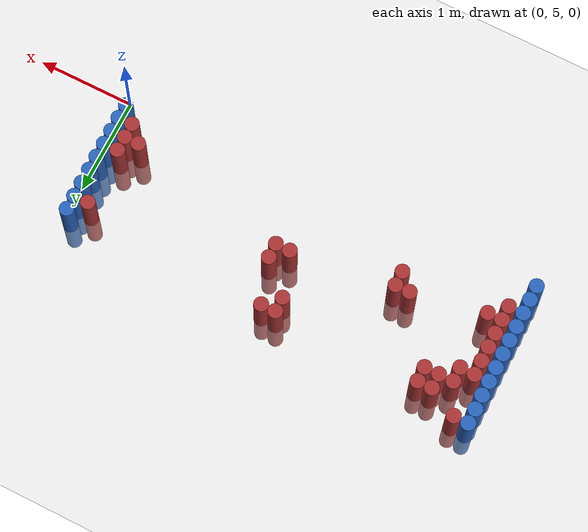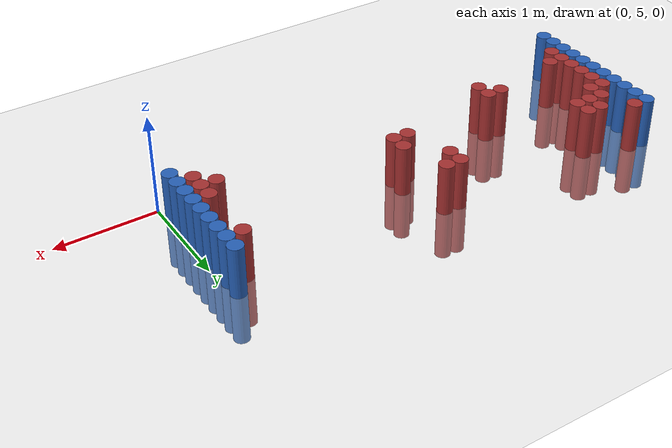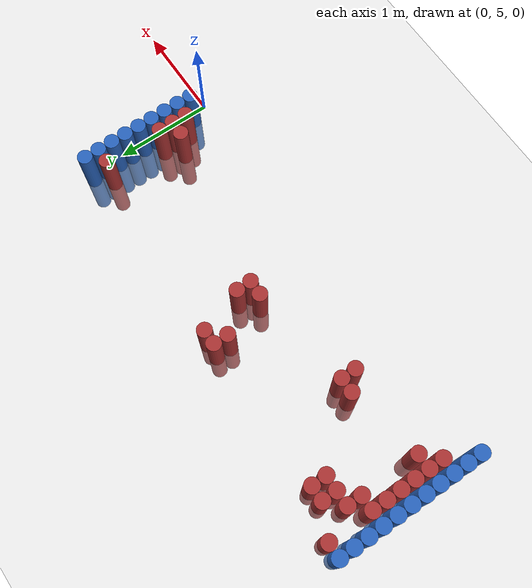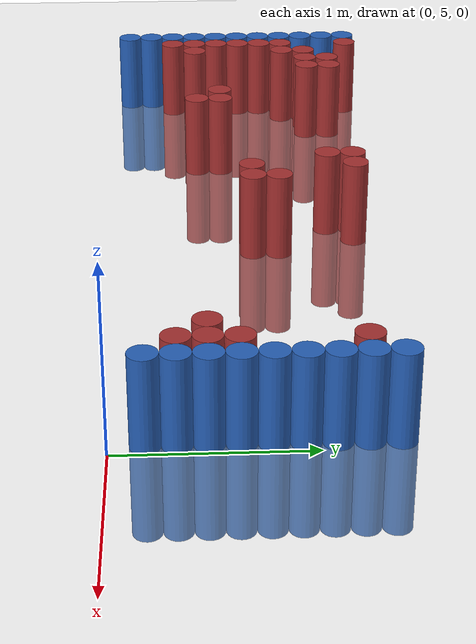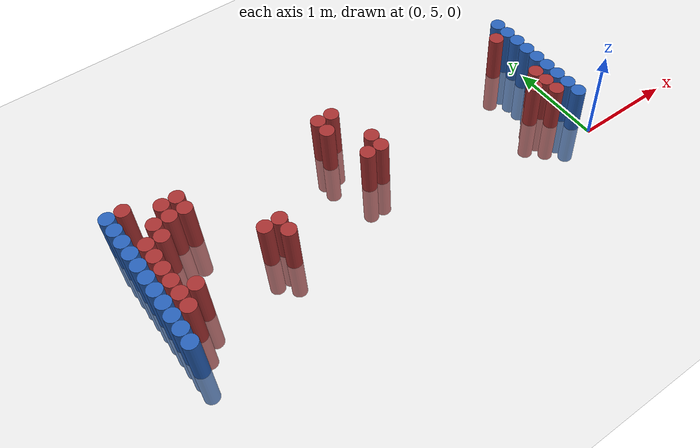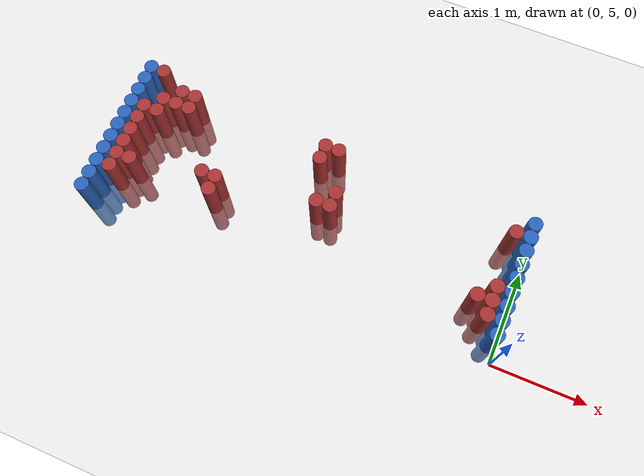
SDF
<sdf version="1.6">
 <world name="default">
  <model name="ground_plane">
   <static>1</static>
   <link name="link">
    <collision name="collision">
     <geometry><plane><normal>0 0 1</normal><size>100 100</size></plane></geometry>
     <surface><friction><ode><mu>100</mu><mu2>50</mu2></ode></friction></surface>
    </collision>
    <visual name="visual">
     <cast_shadows>0</cast_shadows>
     <geometry><plane><normal>0 0 1</normal><size>100 100</size></plane></geometry>
     <material>
      <script><uri>file://media/materials/scripts/gazebo.material</uri><name>Gazebo/Grey</name></script>
     </material>
    </visual>
   </link>
  </model>
  <model name="unit_cylinder_95">
   <static>1</static>
   <pose>-4.425000 5.025000 0.000000 0.000000 0.000000 0.000000</pose>
   <link name="link">
    <inertial>
     <mass>1</mass>
     <inertia><ixx>0.145833</ixx><ixy>0</ixy><ixz>0</ixz><iyy>0.145833</iyy><iyz>0</iyz><izz>0.125</izz></inertia>
    </inertial>
    <collision name="collision">
     <geometry><cylinder><radius>0.075000</radius><length>1</length></cylinder></geometry>
    </collision>
    <visual name="visual">
     <geometry><cylinder><radius>0.075000</radius><length>1</length></cylinder></geometry>
     <material>
      <ambient>0.152000 0.379000 0.720000 1</ambient>
      <diffuse>0.152000 0.379000 0.720000 1</diffuse>
     </material>
     <material>
      <script><name>Gazebo/Grey</name><uri>file://media/materials/scripts/gazebo.material</uri></script>
     </material>
    </visual>
   </link>
  </model>
  <model name="unit_cylinder_96">
   <static>1</static>
   <pose>-4.425000 5.175000 0.000000 0.000000 0.000000 0.000000</pose>
   <link name="link">
    <inertial>
     <mass>1</mass>
     <inertia><ixx>0.145833</ixx><ixy>0</ixy><ixz>0</ixz><iyy>0.145833</iyy><iyz>0</iyz><izz>0.125</izz></inertia>
    </inertial>
    <collision name="collision">
     <geometry><cylinder><radius>0.075000</radius><length>1</length></cylinder></geometry>
    </collision>
    <visual name="visual">
     <geometry><cylinder><radius>0.075000</radius><length>1</length></cylinder></geometry>
     <material>
      <ambient>0.152000 0.379000 0.720000 1</ambient>
      <diffuse>0.152000 0.379000 0.720000 1</diffuse>
     </material>
     <material>
      <script><name>Gazebo/Grey</name><uri>file://media/materials/scripts/gazebo.material</uri></script>
     </material>
    </visual>
   </link>
  </model>
  <model name="unit_cylinder_97">
   <static>1</static>
   <pose>-4.425000 5.325000 0.000000 0.000000 0.000000 0.000000</pose>
   <link name="link">
    <inertial>
     <mass>1</mass>
     <inertia><ixx>0.145833</ixx><ixy>0</ixy><ixz>0</ixz><iyy>0.145833</iyy><iyz>0</iyz><izz>0.125</izz></inertia>
    </inertial>
    <collision name="collision">
     <geometry><cylinder><radius>0.075000</radius><length>1</length></cylinder></geometry>
    </collision>
    <visual name="visual">
     <geometry><cylinder><radius>0.075000</radius><length>1</length></cylinder></geometry>
     <material>
      <ambient>0.152000 0.379000 0.720000 1</ambient>
      <diffuse>0.152000 0.379000 0.720000 1</diffuse>
     </material>
     <material>
      <script><name>Gazebo/Grey</name><uri>file://media/materials/scripts/gazebo.material</uri></script>
     </material>
    </visual>
   </link>
  </model>
  <model name="unit_cylinder_98">
   <static>1</static>
   <pose>-4.425000 5.475000 0.000000 0.000000 0.000000 0.000000</pose>
   <link name="link">
    <inertial>
     <mass>1</mass>
     <inertia><ixx>0.145833</ixx><ixy>0</ixy><ixz>0</ixz><iyy>0.145833</iyy><iyz>0</iyz><izz>0.125</izz></inertia>
    </inertial>
    <collision name="collision">
     <geometry><cylinder><radius>0.075000</radius><length>1</length></cylinder></geometry>
    </collision>
    <visual name="visual">
     <geometry><cylinder><radius>0.075000</radius><length>1</length></cylinder></geometry>
     <material>
      <ambient>0.152000 0.379000 0.720000 1</ambient>
      <diffuse>0.152000 0.379000 0.720000 1</diffuse>
     </material>
     <material>
      <script><name>Gazebo/Grey</name><uri>file://media/materials/scripts/gazebo.material</uri></script>
     </material>
    </visual>
   </link>
  </model>
  <model name="unit_cylinder_99">
   <static>1</static>
   <pose>-4.425000 5.625000 0.000000 0.000000 0.000000 0.000000</pose>
   <link name="link">
    <inertial>
     <mass>1</mass>
     <inertia><ixx>0.145833</ixx><ixy>0</ixy><ixz>0</ixz><iyy>0.145833</iyy><iyz>0</iyz><izz>0.125</izz></inertia>
    </inertial>
    <collision name="collision">
     <geometry><cylinder><radius>0.075000</radius><length>1</length></cylinder></geometry>
    </collision>
    <visual name="visual">
     <geometry><cylinder><radius>0.075000</radius><length>1</length></cylinder></geometry>
     <material>
      <ambient>0.152000 0.379000 0.720000 1</ambient>
      <diffuse>0.152000 0.379000 0.720000 1</diffuse>
     </material>
     <material>
      <script><name>Gazebo/Grey</name><uri>file://media/materials/scripts/gazebo.material</uri></script>
     </material>
    </visual>
   </link>
  </model>
  <model name="unit_cylinder_100">
   <static>1</static>
   <pose>-4.425000 5.775000 0.000000 0.000000 0.000000 0.000000</pose>
   <link name="link">
    <inertial>
     <mass>1</mass>
     <inertia><ixx>0.145833</ixx><ixy>0</ixy><ixz>0</ixz><iyy>0.145833</iyy><iyz>0</iyz><izz>0.125</izz></inertia>
    </inertial>
    <collision name="collision">
     <geometry><cylinder><radius>0.075000</radius><length>1</length></cylinder></geometry>
    </collision>
    <visual name="visual">
     <geometry><cylinder><radius>0.075000</radius><length>1</length></cylinder></geometry>
     <material>
      <ambient>0.152000 0.379000 0.720000 1</ambient>
      <diffuse>0.152000 0.379000 0.720000 1</diffuse>
     </material>
     <material>
      <script><name>Gazebo/Grey</name><uri>file://media/materials/scripts/gazebo.material</uri></script>
     </material>
    </visual>
   </link>
  </model>
  <model name="unit_cylinder_101">
   <static>1</static>
   <pose>-4.425000 5.925000 0.000000 0.000000 0.000000 0.000000</pose>
   <link name="link">
    <inertial>
     <mass>1</mass>
     <inertia><ixx>0.145833</ixx><ixy>0</ixy><ixz>0</ixz><iyy>0.145833</iyy><iyz>0</iyz><izz>0.125</izz></inertia>
    </inertial>
    <collision name="collision">
     <geometry><cylinder><radius>0.075000</radius><length>1</length></cylinder></geometry>
    </collision>
    <visual name="visual">
     <geometry><cylinder><radius>0.075000</radius><length>1</length></cylinder></geometry>
     <material>
      <ambient>0.152000 0.379000 0.720000 1</ambient>
      <diffuse>0.152000 0.379000 0.720000 1</diffuse>
     </material>
     <material>
      <script><name>Gazebo/Grey</name><uri>file://media/materials/scripts/gazebo.material</uri></script>
     </material>
    </visual>
   </link>
  </model>
  <model name="unit_cylinder_102">
   <static>1</static>
   <pose>-4.425000 6.075000 0.000000 0.000000 0.000000 0.000000</pose>
   <link name="link">
    <inertial>
     <mass>1</mass>
     <inertia><ixx>0.145833</ixx><ixy>0</ixy><ixz>0</ixz><iyy>0.145833</iyy><iyz>0</iyz><izz>0.125</izz></inertia>
    </inertial>
    <collision name="collision">
     <geometry><cylinder><radius>0.075000</radius><length>1</length></cylinder></geometry>
    </collision>
    <visual name="visual">
     <geometry><cylinder><radius>0.075000</radius><length>1</length></cylinder></geometry>
     <material>
      <ambient>0.152000 0.379000 0.720000 1</ambient>
      <diffuse>0.152000 0.379000 0.720000 1</diffuse>
     </material>
     <material>
      <script><name>Gazebo/Grey</name><uri>file://media/materials/scripts/gazebo.material</uri></script>
     </material>
    </visual>
   </link>
  </model>
  <model name="unit_cylinder_103">
   <static>1</static>
   <pose>-4.425000 6.225000 0.000000 0.000000 0.000000 0.000000</pose>
   <link name="link">
    <inertial>
     <mass>1</mass>
     <inertia><ixx>0.145833</ixx><ixy>0</ixy><ixz>0</ixz><iyy>0.145833</iyy><iyz>0</iyz><izz>0.125</izz></inertia>
    </inertial>
    <collision name="collision">
     <geometry><cylinder><radius>0.075000</radius><length>1</length></cylinder></geometry>
    </collision>
    <visual name="visual">
     <geometry><cylinder><radius>0.075000</radius><length>1</length></cylinder></geometry>
     <material>
      <ambient>0.152000 0.379000 0.720000 1</ambient>
      <diffuse>0.152000 0.379000 0.720000 1</diffuse>
     </material>
     <material>
      <script><name>Gazebo/Grey</name><uri>file://media/materials/scripts/gazebo.material</uri></script>
     </material>
    </visual>
   </link>
  </model>
  <model name="unit_cylinder_104">
   <static>1</static>
   <pose>-4.425000 6.375000 0.000000 0.000000 0.000000 0.000000</pose>
   <link name="link">
    <inertial>
     <mass>1</mass>
     <inertia><ixx>0.145833</ixx><ixy>0</ixy><ixz>0</ixz><iyy>0.145833</iyy><iyz>0</iyz><izz>0.125</izz></inertia>
    </inertial>
    <collision name="collision">
     <geometry><cylinder><radius>0.075000</radius><length>1</length></cylinder></geometry>
    </collision>
    <visual name="visual">
     <geometry><cylinder><radius>0.075000</radius><length>1</length></cylinder></geometry>
     <material>
      <ambient>0.152000 0.379000 0.720000 1</ambient>
      <diffuse>0.152000 0.379000 0.720000 1</diffuse>
     </material>
     <material>
      <script><name>Gazebo/Grey</name><uri>file://media/materials/scripts/gazebo.material</uri></script>
     </material>
    </visual>
   </link>
  </model>
  <model name="unit_cylinder_105">
   <static>1</static>
   <pose>-4.425000 6.525000 0.000000 0.000000 0.000000 0.000000</pose>
   <link name="link">
    <inertial>
     <mass>1</mass>
     <inertia><ixx>0.145833</ixx><ixy>0</ixy><ixz>0</ixz><iyy>0.145833</iyy><iyz>0</iyz><izz>0.125</izz></inertia>
    </inertial>
    <collision name="collision">
     <geometry><cylinder><radius>0.075000</radius><length>1</length></cylinder></geometry>
    </collision>
    <visual name="visual">
     <geometry><cylinder><radius>0.075000</radius><length>1</length></cylinder></geometry>
     <material>
      <ambient>0.152000 0.379000 0.720000 1</ambient>
      <diffuse>0.152000 0.379000 0.720000 1</diffuse>
     </material>
     <material>
      <script><name>Gazebo/Grey</name><uri>file://media/materials/scripts/gazebo.material</uri></script>
     </material>
    </visual>
   </link>
  </model>
  <model name="unit_cylinder_126">
   <static>1</static>
   <pose>-4.275000 5.325000 0.000000 0.000000 0.000000 0.000000</pose>
   <link name="link">
    <inertial>
     <mass>1</mass>
     <inertia><ixx>0.145833</ixx><ixy>0</ixy><ixz>0</ixz><iyy>0.145833</iyy><iyz>0</iyz><izz>0.125</izz></inertia>
    </inertial>
    <collision name="collision">
     <geometry><cylinder><radius>0.075000</radius><length>1</length></cylinder></geometry>
    </collision>
    <visual name="visual">
     <geometry><cylinder><radius>0.075000</radius><length>1</length></cylinder></geometry>
     <material>
      <ambient>0.648000 0.192000 0.192000 1</ambient>
      <diffuse>0.648000 0.192000 0.192000 1</diffuse>
     </material>
     <material>
      <script><name>Gazebo/Grey</name><uri>file://media/materials/scripts/gazebo.material</uri></script>
     </material>
    </visual>
   </link>
  </model>
  <model name="unit_cylinder_127">
   <static>1</static>
   <pose>-4.275000 5.475000 0.000000 0.000000 0.000000 0.000000</pose>
   <link name="link">
    <inertial>
     <mass>1</mass>
     <inertia><ixx>0.145833</ixx><ixy>0</ixy><ixz>0</ixz><iyy>0.145833</iyy><iyz>0</iyz><izz>0.125</izz></inertia>
    </inertial>
    <collision name="collision">
     <geometry><cylinder><radius>0.075000</radius><length>1</length></cylinder></geometry>
    </collision>
    <visual name="visual">
     <geometry><cylinder><radius>0.075000</radius><length>1</length></cylinder></geometry>
     <material>
      <ambient>0.648000 0.192000 0.192000 1</ambient>
      <diffuse>0.648000 0.192000 0.192000 1</diffuse>
     </material>
     <material>
      <script><name>Gazebo/Grey</name><uri>file://media/materials/scripts/gazebo.material</uri></script>
     </material>
    </visual>
   </link>
  </model>
  <model name="unit_cylinder_128">
   <static>1</static>
   <pose>-4.275000 5.625000 0.000000 0.000000 0.000000 0.000000</pose>
   <link name="link">
    <inertial>
     <mass>1</mass>
     <inertia><ixx>0.145833</ixx><ixy>0</ixy><ixz>0</ixz><iyy>0.145833</iyy><iyz>0</iyz><izz>0.125</izz></inertia>
    </inertial>
    <collision name="collision">
     <geometry><cylinder><radius>0.075000</radius><length>1</length></cylinder></geometry>
    </collision>
    <visual name="visual">
     <geometry><cylinder><radius>0.075000</radius><length>1</length></cylinder></geometry>
     <material>
      <ambient>0.648000 0.192000 0.192000 1</ambient>
      <diffuse>0.648000 0.192000 0.192000 1</diffuse>
     </material>
     <material>
      <script><name>Gazebo/Grey</name><uri>file://media/materials/scripts/gazebo.material</uri></script>
     </material>
    </visual>
   </link>
  </model>
  <model name="unit_cylinder_129">
   <static>1</static>
   <pose>-4.275000 5.775000 0.000000 0.000000 0.000000 0.000000</pose>
   <link name="link">
    <inertial>
     <mass>1</mass>
     <inertia><ixx>0.145833</ixx><ixy>0</ixy><ixz>0</ixz><iyy>0.145833</iyy><iyz>0</iyz><izz>0.125</izz></inertia>
    </inertial>
    <collision name="collision">
     <geometry><cylinder><radius>0.075000</radius><length>1</length></cylinder></geometry>
    </collision>
    <visual name="visual">
     <geometry><cylinder><radius>0.075000</radius><length>1</length></cylinder></geometry>
     <material>
      <ambient>0.648000 0.192000 0.192000 1</ambient>
      <diffuse>0.648000 0.192000 0.192000 1</diffuse>
     </material>
     <material>
      <script><name>Gazebo/Grey</name><uri>file://media/materials/scripts/gazebo.material</uri></script>
     </material>
    </visual>
   </link>
  </model>
  <model name="unit_cylinder_130">
   <static>1</static>
   <pose>-4.275000 5.925000 0.000000 0.000000 0.000000 0.000000</pose>
   <link name="link">
    <inertial>
     <mass>1</mass>
     <inertia><ixx>0.145833</ixx><ixy>0</ixy><ixz>0</ixz><iyy>0.145833</iyy><iyz>0</iyz><izz>0.125</izz></inertia>
    </inertial>
    <collision name="collision">
     <geometry><cylinder><radius>0.075000</radius><length>1</length></cylinder></geometry>
    </collision>
    <visual name="visual">
     <geometry><cylinder><radius>0.075000</radius><length>1</length></cylinder></geometry>
     <material>
      <ambient>0.648000 0.192000 0.192000 1</ambient>
      <diffuse>0.648000 0.192000 0.192000 1</diffuse>
     </material>
     <material>
      <script><name>Gazebo/Grey</name><uri>file://media/materials/scripts/gazebo.material</uri></script>
     </material>
    </visual>
   </link>
  </model>
  <model name="unit_cylinder_131">
   <static>1</static>
   <pose>-4.275000 6.075000 0.000000 0.000000 0.000000 0.000000</pose>
   <link name="link">
    <inertial>
     <mass>1</mass>
     <inertia><ixx>0.145833</ixx><ixy>0</ixy><ixz>0</ixz><iyy>0.145833</iyy><iyz>0</iyz><izz>0.125</izz></inertia>
    </inertial>
    <collision name="collision">
     <geometry><cylinder><radius>0.075000</radius><length>1</length></cylinder></geometry>
    </collision>
    <visual name="visual">
     <geometry><cylinder><radius>0.075000</radius><length>1</length></cylinder></geometry>
     <material>
      <ambient>0.648000 0.192000 0.192000 1</ambient>
      <diffuse>0.648000 0.192000 0.192000 1</diffuse>
     </material>
     <material>
      <script><name>Gazebo/Grey</name><uri>file://media/materials/scripts/gazebo.material</uri></script>
     </material>
    </visual>
   </link>
  </model>
  <model name="unit_cylinder_132">
   <static>1</static>
   <pose>-4.275000 6.525000 0.000000 0.000000 0.000000 0.000000</pose>
   <link name="link">
    <inertial>
     <mass>1</mass>
     <inertia><ixx>0.145833</ixx><ixy>0</ixy><ixz>0</ixz><iyy>0.145833</iyy><iyz>0</iyz><izz>0.125</izz></inertia>
    </inertial>
    <collision name="collision">
     <geometry><cylinder><radius>0.075000</radius><length>1</length></cylinder></geometry>
    </collision>
    <visual name="visual">
     <geometry><cylinder><radius>0.075000</radius><length>1</length></cylinder></geometry>
     <material>
      <ambient>0.648000 0.192000 0.192000 1</ambient>
      <diffuse>0.648000 0.192000 0.192000 1</diffuse>
     </material>
     <material>
      <script><name>Gazebo/Grey</name><uri>file://media/materials/scripts/gazebo.material</uri></script>
     </material>
    </visual>
   </link>
  </model>
  <model name="unit_cylinder_141">
   <static>1</static>
   <pose>-4.125000 5.475000 0.000000 0.000000 0.000000 0.000000</pose>
   <link name="link">
    <inertial>
     <mass>1</mass>
     <inertia><ixx>0.145833</ixx><ixy>0</ixy><ixz>0</ixz><iyy>0.145833</iyy><iyz>0</iyz><izz>0.125</izz></inertia>
    </inertial>
    <collision name="collision">
     <geometry><cylinder><radius>0.075000</radius><length>1</length></cylinder></geometry>
    </collision>
    <visual name="visual">
     <geometry><cylinder><radius>0.075000</radius><length>1</length></cylinder></geometry>
     <material>
      <ambient>0.648000 0.192000 0.192000 1</ambient>
      <diffuse>0.648000 0.192000 0.192000 1</diffuse>
     </material>
     <material>
      <script><name>Gazebo/Grey</name><uri>file://media/materials/scripts/gazebo.material</uri></script>
     </material>
    </visual>
   </link>
  </model>
  <model name="unit_cylinder_142">
   <static>1</static>
   <pose>-4.125000 6.075000 0.000000 0.000000 0.000000 0.000000</pose>
   <link name="link">
    <inertial>
     <mass>1</mass>
     <inertia><ixx>0.145833</ixx><ixy>0</ixy><ixz>0</ixz><iyy>0.145833</iyy><iyz>0</iyz><izz>0.125</izz></inertia>
    </inertial>
    <collision name="collision">
     <geometry><cylinder><radius>0.075000</radius><length>1</length></cylinder></geometry>
    </collision>
    <visual name="visual">
     <geometry><cylinder><radius>0.075000</radius><length>1</length></cylinder></geometry>
     <material>
      <ambient>0.648000 0.192000 0.192000 1</ambient>
      <diffuse>0.648000 0.192000 0.192000 1</diffuse>
     </material>
     <material>
      <script><name>Gazebo/Grey</name><uri>file://media/materials/scripts/gazebo.material</uri></script>
     </material>
    </visual>
   </link>
  </model>
  <model name="unit_cylinder_143">
   <static>1</static>
   <pose>-4.125000 6.225000 0.000000 0.000000 0.000000 0.000000</pose>
   <link name="link">
    <inertial>
     <mass>1</mass>
     <inertia><ixx>0.145833</ixx><ixy>0</ixy><ixz>0</ixz><iyy>0.145833</iyy><iyz>0</iyz><izz>0.125</izz></inertia>
    </inertial>
    <collision name="collision">
     <geometry><cylinder><radius>0.075000</radius><length>1</length></cylinder></geometry>
    </collision>
    <visual name="visual">
     <geometry><cylinder><radius>0.075000</radius><length>1</length></cylinder></geometry>
     <material>
      <ambient>0.648000 0.192000 0.192000 1</ambient>
      <diffuse>0.648000 0.192000 0.192000 1</diffuse>
     </material>
     <material>
      <script><name>Gazebo/Grey</name><uri>file://media/materials/scripts/gazebo.material</uri></script>
     </material>
    </visual>
   </link>
  </model>
  <model name="unit_cylinder_148">
   <static>1</static>
   <pose>-3.975000 6.225000 0.000000 0.000000 0.000000 0.000000</pose>
   <link name="link">
    <inertial>
     <mass>1</mass>
     <inertia><ixx>0.145833</ixx><ixy>0</ixy><ixz>0</ixz><iyy>0.145833</iyy><iyz>0</iyz><izz>0.125</izz></inertia>
    </inertial>
    <collision name="collision">
     <geometry><cylinder><radius>0.075000</radius><length>1</length></cylinder></geometry>
    </collision>
    <visual name="visual">
     <geometry><cylinder><radius>0.075000</radius><length>1</length></cylinder></geometry>
     <material>
      <ambient>0.648000 0.192000 0.192000 1</ambient>
      <diffuse>0.648000 0.192000 0.192000 1</diffuse>
     </material>
     <material>
      <script><name>Gazebo/Grey</name><uri>file://media/materials/scripts/gazebo.material</uri></script>
     </material>
    </visual>
   </link>
  </model>
  <model name="unit_cylinder_149">
   <static>1</static>
   <pose>-3.975000 6.375000 0.000000 0.000000 0.000000 0.000000</pose>
   <link name="link">
    <inertial>
     <mass>1</mass>
     <inertia><ixx>0.145833</ixx><ixy>0</ixy><ixz>0</ixz><iyy>0.145833</iyy><iyz>0</iyz><izz>0.125</izz></inertia>
    </inertial>
    <collision name="collision">
     <geometry><cylinder><radius>0.075000</radius><length>1</length></cylinder></geometry>
    </collision>
    <visual name="visual">
     <geometry><cylinder><radius>0.075000</radius><length>1</length></cylinder></geometry>
     <material>
      <ambient>0.648000 0.192000 0.192000 1</ambient>
      <diffuse>0.648000 0.192000 0.192000 1</diffuse>
     </material>
     <material>
      <script><name>Gazebo/Grey</name><uri>file://media/materials/scripts/gazebo.material</uri></script>
     </material>
    </visual>
   </link>
  </model>
  <model name="unit_cylinder_153">
   <static>1</static>
   <pose>-3.825000 6.225000 0.000000 0.000000 0.000000 0.000000</pose>
   <link name="link">
    <inertial>
     <mass>1</mass>
     <inertia><ixx>0.145833</ixx><ixy>0</ixy><ixz>0</ixz><iyy>0.145833</iyy><iyz>0</iyz><izz>0.125</izz></inertia>
    </inertial>
    <collision name="collision">
     <geometry><cylinder><radius>0.075000</radius><length>1</length></cylinder></geometry>
    </collision>
    <visual name="visual">
     <geometry><cylinder><radius>0.075000</radius><length>1</length></cylinder></geometry>
     <material>
      <ambient>0.648000 0.192000 0.192000 1</ambient>
      <diffuse>0.648000 0.192000 0.192000 1</diffuse>
     </material>
     <material>
      <script><name>Gazebo/Grey</name><uri>file://media/materials/scripts/gazebo.material</uri></script>
     </material>
    </visual>
   </link>
  </model>
  <model name="unit_cylinder_154">
   <static>1</static>
   <pose>-3.825000 6.375000 0.000000 0.000000 0.000000 0.000000</pose>
   <link name="link">
    <inertial>
     <mass>1</mass>
     <inertia><ixx>0.145833</ixx><ixy>0</ixy><ixz>0</ixz><iyy>0.145833</iyy><iyz>0</iyz><izz>0.125</izz></inertia>
    </inertial>
    <collision name="collision">
     <geometry><cylinder><radius>0.075000</radius><length>1</length></cylinder></geometry>
    </collision>
    <visual name="visual">
     <geometry><cylinder><radius>0.075000</radius><length>1</length></cylinder></geometry>
     <material>
      <ambient>0.648000 0.192000 0.192000 1</ambient>
      <diffuse>0.648000 0.192000 0.192000 1</diffuse>
     </material>
     <material>
      <script><name>Gazebo/Grey</name><uri>file://media/materials/scripts/gazebo.material</uri></script>
     </material>
    </visual>
   </link>
  </model>
  <model name="unit_cylinder_159">
   <static>1</static>
   <pose>-3.375000 5.625000 0.000000 0.000000 0.000000 0.000000</pose>
   <link name="link">
    <inertial>
     <mass>1</mass>
     <inertia><ixx>0.145833</ixx><ixy>0</ixy><ixz>0</ixz><iyy>0.145833</iyy><iyz>0</iyz><izz>0.125</izz></inertia>
    </inertial>
    <collision name="collision">
     <geometry><cylinder><radius>0.075000</radius><length>1</length></cylinder></geometry>
    </collision>
    <visual name="visual">
     <geometry><cylinder><radius>0.075000</radius><length>1</length></cylinder></geometry>
     <material>
      <ambient>0.648000 0.192000 0.192000 1</ambient>
      <diffuse>0.648000 0.192000 0.192000 1</diffuse>
     </material>
     <material>
      <script><name>Gazebo/Grey</name><uri>file://media/materials/scripts/gazebo.material</uri></script>
     </material>
    </visual>
   </link>
  </model>
  <model name="unit_cylinder_162">
   <static>1</static>
   <pose>-3.225000 5.475000 0.000000 0.000000 0.000000 0.000000</pose>
   <link name="link">
    <inertial>
     <mass>1</mass>
     <inertia><ixx>0.145833</ixx><ixy>0</ixy><ixz>0</ixz><iyy>0.145833</iyy><iyz>0</iyz><izz>0.125</izz></inertia>
    </inertial>
    <collision name="collision">
     <geometry><cylinder><radius>0.075000</radius><length>1</length></cylinder></geometry>
    </collision>
    <visual name="visual">
     <geometry><cylinder><radius>0.075000</radius><length>1</length></cylinder></geometry>
     <material>
      <ambient>0.648000 0.192000 0.192000 1</ambient>
      <diffuse>0.648000 0.192000 0.192000 1</diffuse>
     </material>
     <material>
      <script><name>Gazebo/Grey</name><uri>file://media/materials/scripts/gazebo.material</uri></script>
     </material>
    </visual>
   </link>
  </model>
  <model name="unit_cylinder_163">
   <static>1</static>
   <pose>-3.225000 5.625000 0.000000 0.000000 0.000000 0.000000</pose>
   <link name="link">
    <inertial>
     <mass>1</mass>
     <inertia><ixx>0.145833</ixx><ixy>0</ixy><ixz>0</ixz><iyy>0.145833</iyy><iyz>0</iyz><izz>0.125</izz></inertia>
    </inertial>
    <collision name="collision">
     <geometry><cylinder><radius>0.075000</radius><length>1</length></cylinder></geometry>
    </collision>
    <visual name="visual">
     <geometry><cylinder><radius>0.075000</radius><length>1</length></cylinder></geometry>
     <material>
      <ambient>0.648000 0.192000 0.192000 1</ambient>
      <diffuse>0.648000 0.192000 0.192000 1</diffuse>
     </material>
     <material>
      <script><name>Gazebo/Grey</name><uri>file://media/materials/scripts/gazebo.material</uri></script>
     </material>
    </visual>
   </link>
  </model>
  <model name="unit_cylinder_176">
   <static>1</static>
   <pose>-2.325000 6.225000 0.000000 0.000000 0.000000 0.000000</pose>
   <link name="link">
    <inertial>
     <mass>1</mass>
     <inertia><ixx>0.145833</ixx><ixy>0</ixy><ixz>0</ixz><iyy>0.145833</iyy><iyz>0</iyz><izz>0.125</izz></inertia>
    </inertial>
    <collision name="collision">
     <geometry><cylinder><radius>0.075000</radius><length>1</length></cylinder></geometry>
    </collision>
    <visual name="visual">
     <geometry><cylinder><radius>0.075000</radius><length>1</length></cylinder></geometry>
     <material>
      <ambient>0.648000 0.192000 0.192000 1</ambient>
      <diffuse>0.648000 0.192000 0.192000 1</diffuse>
     </material>
     <material>
      <script><name>Gazebo/Grey</name><uri>file://media/materials/scripts/gazebo.material</uri></script>
     </material>
    </visual>
   </link>
  </model>
  <model name="unit_cylinder_177">
   <static>1</static>
   <pose>-2.325000 6.375000 0.000000 0.000000 0.000000 0.000000</pose>
   <link name="link">
    <inertial>
     <mass>1</mass>
     <inertia><ixx>0.145833</ixx><ixy>0</ixy><ixz>0</ixz><iyy>0.145833</iyy><iyz>0</iyz><izz>0.125</izz></inertia>
    </inertial>
    <collision name="collision">
     <geometry><cylinder><radius>0.075000</radius><length>1</length></cylinder></geometry>
    </collision>
    <visual name="visual">
     <geometry><cylinder><radius>0.075000</radius><length>1</length></cylinder></geometry>
     <material>
      <ambient>0.648000 0.192000 0.192000 1</ambient>
      <diffuse>0.648000 0.192000 0.192000 1</diffuse>
     </material>
     <material>
      <script><name>Gazebo/Grey</name><uri>file://media/materials/scripts/gazebo.material</uri></script>
     </material>
    </visual>
   </link>
  </model>
  <model name="unit_cylinder_178">
   <static>1</static>
   <pose>-2.175000 5.775000 0.000000 0.000000 0.000000 0.000000</pose>
   <link name="link">
    <inertial>
     <mass>1</mass>
     <inertia><ixx>0.145833</ixx><ixy>0</ixy><ixz>0</ixz><iyy>0.145833</iyy><iyz>0</iyz><izz>0.125</izz></inertia>
    </inertial>
    <collision name="collision">
     <geometry><cylinder><radius>0.075000</radius><length>1</length></cylinder></geometry>
    </collision>
    <visual name="visual">
     <geometry><cylinder><radius>0.075000</radius><length>1</length></cylinder></geometry>
     <material>
      <ambient>0.648000 0.192000 0.192000 1</ambient>
      <diffuse>0.648000 0.192000 0.192000 1</diffuse>
     </material>
     <material>
      <script><name>Gazebo/Grey</name><uri>file://media/materials/scripts/gazebo.material</uri></script>
     </material>
    </visual>
   </link>
  </model>
  <model name="unit_cylinder_179">
   <static>1</static>
   <pose>-2.175000 6.375000 0.000000 0.000000 0.000000 0.000000</pose>
   <link name="link">
    <inertial>
     <mass>1</mass>
     <inertia><ixx>0.145833</ixx><ixy>0</ixy><ixz>0</ixz><iyy>0.145833</iyy><iyz>0</iyz><izz>0.125</izz></inertia>
    </inertial>
    <collision name="collision">
     <geometry><cylinder><radius>0.075000</radius><length>1</length></cylinder></geometry>
    </collision>
    <visual name="visual">
     <geometry><cylinder><radius>0.075000</radius><length>1</length></cylinder></geometry>
     <material>
      <ambient>0.648000 0.192000 0.192000 1</ambient>
      <diffuse>0.648000 0.192000 0.192000 1</diffuse>
     </material>
     <material>
      <script><name>Gazebo/Grey</name><uri>file://media/materials/scripts/gazebo.material</uri></script>
     </material>
    </visual>
   </link>
  </model>
  <model name="unit_cylinder_182">
   <static>1</static>
   <pose>-2.025000 5.775000 0.000000 0.000000 0.000000 0.000000</pose>
   <link name="link">
    <inertial>
     <mass>1</mass>
     <inertia><ixx>0.145833</ixx><ixy>0</ixy><ixz>0</ixz><iyy>0.145833</iyy><iyz>0</iyz><izz>0.125</izz></inertia>
    </inertial>
    <collision name="collision">
     <geometry><cylinder><radius>0.075000</radius><length>1</length></cylinder></geometry>
    </collision>
    <visual name="visual">
     <geometry><cylinder><radius>0.075000</radius><length>1</length></cylinder></geometry>
     <material>
      <ambient>0.648000 0.192000 0.192000 1</ambient>
      <diffuse>0.648000 0.192000 0.192000 1</diffuse>
     </material>
     <material>
      <script><name>Gazebo/Grey</name><uri>file://media/materials/scripts/gazebo.material</uri></script>
     </material>
    </visual>
   </link>
  </model>
  <model name="unit_cylinder_183">
   <static>1</static>
   <pose>-2.025000 5.925000 0.000000 0.000000 0.000000 0.000000</pose>
   <link name="link">
    <inertial>
     <mass>1</mass>
     <inertia><ixx>0.145833</ixx><ixy>0</ixy><ixz>0</ixz><iyy>0.145833</iyy><iyz>0</iyz><izz>0.125</izz></inertia>
    </inertial>
    <collision name="collision">
     <geometry><cylinder><radius>0.075000</radius><length>1</length></cylinder></geometry>
    </collision>
    <visual name="visual">
     <geometry><cylinder><radius>0.075000</radius><length>1</length></cylinder></geometry>
     <material>
      <ambient>0.648000 0.192000 0.192000 1</ambient>
      <diffuse>0.648000 0.192000 0.192000 1</diffuse>
     </material>
     <material>
      <script><name>Gazebo/Grey</name><uri>file://media/materials/scripts/gazebo.material</uri></script>
     </material>
    </visual>
   </link>
  </model>
  <model name="unit_cylinder_189">
   <static>1</static>
   <pose>-0.375000 5.475000 0.000000 0.000000 0.000000 0.000000</pose>
   <link name="link">
    <inertial>
     <mass>1</mass>
     <inertia><ixx>0.145833</ixx><ixy>0</ixy><ixz>0</ixz><iyy>0.145833</iyy><iyz>0</iyz><izz>0.125</izz></inertia>
    </inertial>
    <collision name="collision">
     <geometry><cylinder><radius>0.075000</radius><length>1</length></cylinder></geometry>
    </collision>
    <visual name="visual">
     <geometry><cylinder><radius>0.075000</radius><length>1</length></cylinder></geometry>
     <material>
      <ambient>0.648000 0.192000 0.192000 1</ambient>
      <diffuse>0.648000 0.192000 0.192000 1</diffuse>
     </material>
     <material>
      <script><name>Gazebo/Grey</name><uri>file://media/materials/scripts/gazebo.material</uri></script>
     </material>
    </visual>
   </link>
  </model>
  <model name="unit_cylinder_193">
   <static>1</static>
   <pose>-0.225000 5.325000 0.000000 0.000000 0.000000 0.000000</pose>
   <link name="link">
    <inertial>
     <mass>1</mass>
     <inertia><ixx>0.145833</ixx><ixy>0</ixy><ixz>0</ixz><iyy>0.145833</iyy><iyz>0</iyz><izz>0.125</izz></inertia>
    </inertial>
    <collision name="collision">
     <geometry><cylinder><radius>0.075000</radius><length>1</length></cylinder></geometry>
    </collision>
    <visual name="visual">
     <geometry><cylinder><radius>0.075000</radius><length>1</length></cylinder></geometry>
     <material>
      <ambient>0.648000 0.192000 0.192000 1</ambient>
      <diffuse>0.648000 0.192000 0.192000 1</diffuse>
     </material>
     <material>
      <script><name>Gazebo/Grey</name><uri>file://media/materials/scripts/gazebo.material</uri></script>
     </material>
    </visual>
   </link>
  </model>
  <model name="unit_cylinder_194">
   <static>1</static>
   <pose>-0.225000 5.475000 0.000000 0.000000 0.000000 0.000000</pose>
   <link name="link">
    <inertial>
     <mass>1</mass>
     <inertia><ixx>0.145833</ixx><ixy>0</ixy><ixz>0</ixz><iyy>0.145833</iyy><iyz>0</iyz><izz>0.125</izz></inertia>
    </inertial>
    <collision name="collision">
     <geometry><cylinder><radius>0.075000</radius><length>1</length></cylinder></geometry>
    </collision>
    <visual name="visual">
     <geometry><cylinder><radius>0.075000</radius><length>1</length></cylinder></geometry>
     <material>
      <ambient>0.648000 0.192000 0.192000 1</ambient>
      <diffuse>0.648000 0.192000 0.192000 1</diffuse>
     </material>
     <material>
      <script><name>Gazebo/Grey</name><uri>file://media/materials/scripts/gazebo.material</uri></script>
     </material>
    </visual>
   </link>
  </model>
  <model name="unit_cylinder_195">
   <static>1</static>
   <pose>-0.225000 5.625000 0.000000 0.000000 0.000000 0.000000</pose>
   <link name="link">
    <inertial>
     <mass>1</mass>
     <inertia><ixx>0.145833</ixx><ixy>0</ixy><ixz>0</ixz><iyy>0.145833</iyy><iyz>0</iyz><izz>0.125</izz></inertia>
    </inertial>
    <collision name="collision">
     <geometry><cylinder><radius>0.075000</radius><length>1</length></cylinder></geometry>
    </collision>
    <visual name="visual">
     <geometry><cylinder><radius>0.075000</radius><length>1</length></cylinder></geometry>
     <material>
      <ambient>0.648000 0.192000 0.192000 1</ambient>
      <diffuse>0.648000 0.192000 0.192000 1</diffuse>
     </material>
     <material>
      <script><name>Gazebo/Grey</name><uri>file://media/materials/scripts/gazebo.material</uri></script>
     </material>
    </visual>
   </link>
  </model>
  <model name="unit_cylinder_196">
   <static>1</static>
   <pose>-0.225000 6.225000 0.000000 0.000000 0.000000 0.000000</pose>
   <link name="link">
    <inertial>
     <mass>1</mass>
     <inertia><ixx>0.145833</ixx><ixy>0</ixy><ixz>0</ixz><iyy>0.145833</iyy><iyz>0</iyz><izz>0.125</izz></inertia>
    </inertial>
    <collision name="collision">
     <geometry><cylinder><radius>0.075000</radius><length>1</length></cylinder></geometry>
    </collision>
    <visual name="visual">
     <geometry><cylinder><radius>0.075000</radius><length>1</length></cylinder></geometry>
     <material>
      <ambient>0.648000 0.192000 0.192000 1</ambient>
      <diffuse>0.648000 0.192000 0.192000 1</diffuse>
     </material>
     <material>
      <script><name>Gazebo/Grey</name><uri>file://media/materials/scripts/gazebo.material</uri></script>
     </material>
    </visual>
   </link>
  </model>
  <model name="unit_cylinder_208">
   <static>1</static>
   <pose>-0.075000 5.175000 0.000000 0.000000 0.000000 0.000000</pose>
   <link name="link">
    <inertial>
     <mass>1</mass>
     <inertia><ixx>0.145833</ixx><ixy>0</ixy><ixz>0</ixz><iyy>0.145833</iyy><iyz>0</iyz><izz>0.125</izz></inertia>
    </inertial>
    <collision name="collision">
     <geometry><cylinder><radius>0.075000</radius><length>1</length></cylinder></geometry>
    </collision>
    <visual name="visual">
     <geometry><cylinder><radius>0.075000</radius><length>1</length></cylinder></geometry>
     <material>
      <ambient>0.152000 0.379000 0.720000 1</ambient>
      <diffuse>0.152000 0.379000 0.720000 1</diffuse>
     </material>
     <material>
      <script><name>Gazebo/Grey</name><uri>file://media/materials/scripts/gazebo.material</uri></script>
     </material>
    </visual>
   </link>
  </model>
  <model name="unit_cylinder_209">
   <static>1</static>
   <pose>-0.075000 5.325000 0.000000 0.000000 0.000000 0.000000</pose>
   <link name="link">
    <inertial>
     <mass>1</mass>
     <inertia><ixx>0.145833</ixx><ixy>0</ixy><ixz>0</ixz><iyy>0.145833</iyy><iyz>0</iyz><izz>0.125</izz></inertia>
    </inertial>
    <collision name="collision">
     <geometry><cylinder><radius>0.075000</radius><length>1</length></cylinder></geometry>
    </collision>
    <visual name="visual">
     <geometry><cylinder><radius>0.075000</radius><length>1</length></cylinder></geometry>
     <material>
      <ambient>0.152000 0.379000 0.720000 1</ambient>
      <diffuse>0.152000 0.379000 0.720000 1</diffuse>
     </material>
     <material>
      <script><name>Gazebo/Grey</name><uri>file://media/materials/scripts/gazebo.material</uri></script>
     </material>
    </visual>
   </link>
  </model>
  <model name="unit_cylinder_210">
   <static>1</static>
   <pose>-0.075000 5.475000 0.000000 0.000000 0.000000 0.000000</pose>
   <link name="link">
    <inertial>
     <mass>1</mass>
     <inertia><ixx>0.145833</ixx><ixy>0</ixy><ixz>0</ixz><iyy>0.145833</iyy><iyz>0</iyz><izz>0.125</izz></inertia>
    </inertial>
    <collision name="collision">
     <geometry><cylinder><radius>0.075000</radius><length>1</length></cylinder></geometry>
    </collision>
    <visual name="visual">
     <geometry><cylinder><radius>0.075000</radius><length>1</length></cylinder></geometry>
     <material>
      <ambient>0.152000 0.379000 0.720000 1</ambient>
      <diffuse>0.152000 0.379000 0.720000 1</diffuse>
     </material>
     <material>
      <script><name>Gazebo/Grey</name><uri>file://media/materials/scripts/gazebo.material</uri></script>
     </material>
    </visual>
   </link>
  </model>
  <model name="unit_cylinder_211">
   <static>1</static>
   <pose>-0.075000 5.625000 0.000000 0.000000 0.000000 0.000000</pose>
   <link name="link">
    <inertial>
     <mass>1</mass>
     <inertia><ixx>0.145833</ixx><ixy>0</ixy><ixz>0</ixz><iyy>0.145833</iyy><iyz>0</iyz><izz>0.125</izz></inertia>
    </inertial>
    <collision name="collision">
     <geometry><cylinder><radius>0.075000</radius><length>1</length></cylinder></geometry>
    </collision>
    <visual name="visual">
     <geometry><cylinder><radius>0.075000</radius><length>1</length></cylinder></geometry>
     <material>
      <ambient>0.152000 0.379000 0.720000 1</ambient>
      <diffuse>0.152000 0.379000 0.720000 1</diffuse>
     </material>
     <material>
      <script><name>Gazebo/Grey</name><uri>file://media/materials/scripts/gazebo.material</uri></script>
     </material>
    </visual>
   </link>
  </model>
  <model name="unit_cylinder_212">
   <static>1</static>
   <pose>-0.075000 5.775000 0.000000 0.000000 0.000000 0.000000</pose>
   <link name="link">
    <inertial>
     <mass>1</mass>
     <inertia><ixx>0.145833</ixx><ixy>0</ixy><ixz>0</ixz><iyy>0.145833</iyy><iyz>0</iyz><izz>0.125</izz></inertia>
    </inertial>
    <collision name="collision">
     <geometry><cylinder><radius>0.075000</radius><length>1</length></cylinder></geometry>
    </collision>
    <visual name="visual">
     <geometry><cylinder><radius>0.075000</radius><length>1</length></cylinder></geometry>
     <material>
      <ambient>0.152000 0.379000 0.720000 1</ambient>
      <diffuse>0.152000 0.379000 0.720000 1</diffuse>
     </material>
     <material>
      <script><name>Gazebo/Grey</name><uri>file://media/materials/scripts/gazebo.material</uri></script>
     </material>
    </visual>
   </link>
  </model>
  <model name="unit_cylinder_213">
   <static>1</static>
   <pose>-0.075000 5.925000 0.000000 0.000000 0.000000 0.000000</pose>
   <link name="link">
    <inertial>
     <mass>1</mass>
     <inertia><ixx>0.145833</ixx><ixy>0</ixy><ixz>0</ixz><iyy>0.145833</iyy><iyz>0</iyz><izz>0.125</izz></inertia>
    </inertial>
    <collision name="collision">
     <geometry><cylinder><radius>0.075000</radius><length>1</length></cylinder></geometry>
    </collision>
    <visual name="visual">
     <geometry><cylinder><radius>0.075000</radius><length>1</length></cylinder></geometry>
     <material>
      <ambient>0.152000 0.379000 0.720000 1</ambient>
      <diffuse>0.152000 0.379000 0.720000 1</diffuse>
     </material>
     <material>
      <script><name>Gazebo/Grey</name><uri>file://media/materials/scripts/gazebo.material</uri></script>
     </material>
    </visual>
   </link>
  </model>
  <model name="unit_cylinder_214">
   <static>1</static>
   <pose>-0.075000 6.075000 0.000000 0.000000 0.000000 0.000000</pose>
   <link name="link">
    <inertial>
     <mass>1</mass>
     <inertia><ixx>0.145833</ixx><ixy>0</ixy><ixz>0</ixz><iyy>0.145833</iyy><iyz>0</iyz><izz>0.125</izz></inertia>
    </inertial>
    <collision name="collision">
     <geometry><cylinder><radius>0.075000</radius><length>1</length></cylinder></geometry>
    </collision>
    <visual name="visual">
     <geometry><cylinder><radius>0.075000</radius><length>1</length></cylinder></geometry>
     <material>
      <ambient>0.152000 0.379000 0.720000 1</ambient>
      <diffuse>0.152000 0.379000 0.720000 1</diffuse>
     </material>
     <material>
      <script><name>Gazebo/Grey</name><uri>file://media/materials/scripts/gazebo.material</uri></script>
     </material>
    </visual>
   </link>
  </model>
  <model name="unit_cylinder_215">
   <static>1</static>
   <pose>-0.075000 6.225000 0.000000 0.000000 0.000000 0.000000</pose>
   <link name="link">
    <inertial>
     <mass>1</mass>
     <inertia><ixx>0.145833</ixx><ixy>0</ixy><ixz>0</ixz><iyy>0.145833</iyy><iyz>0</iyz><izz>0.125</izz></inertia>
    </inertial>
    <collision name="collision">
     <geometry><cylinder><radius>0.075000</radius><length>1</length></cylinder></geometry>
    </collision>
    <visual name="visual">
     <geometry><cylinder><radius>0.075000</radius><length>1</length></cylinder></geometry>
     <material>
      <ambient>0.152000 0.379000 0.720000 1</ambient>
      <diffuse>0.152000 0.379000 0.720000 1</diffuse>
     </material>
     <material>
      <script><name>Gazebo/Grey</name><uri>file://media/materials/scripts/gazebo.material</uri></script>
     </material>
    </visual>
   </link>
  </model>
  <model name="unit_cylinder_216">
   <static>1</static>
   <pose>-0.075000 6.375000 0.000000 0.000000 0.000000 0.000000</pose>
   <link name="link">
    <inertial>
     <mass>1</mass>
     <inertia><ixx>0.145833</ixx><ixy>0</ixy><ixz>0</ixz><iyy>0.145833</iyy><iyz>0</iyz><izz>0.125</izz></inertia>
    </inertial>
    <collision name="collision">
     <geometry><cylinder><radius>0.075000</radius><length>1</length></cylinder></geometry>
    </collision>
    <visual name="visual">
     <geometry><cylinder><radius>0.075000</radius><length>1</length></cylinder></geometry>
     <material>
      <ambient>0.152000 0.379000 0.720000 1</ambient>
      <diffuse>0.152000 0.379000 0.720000 1</diffuse>
     </material>
     <material>
      <script><name>Gazebo/Grey</name><uri>file://media/materials/scripts/gazebo.material</uri></script>
     </material>
    </visual>
   </link>
  </model>
 </world>
</sdf>
